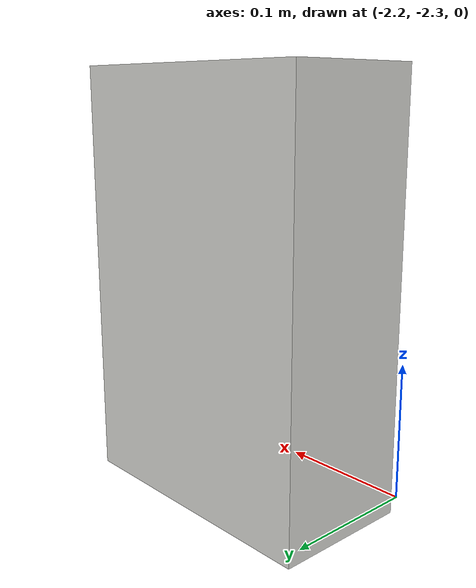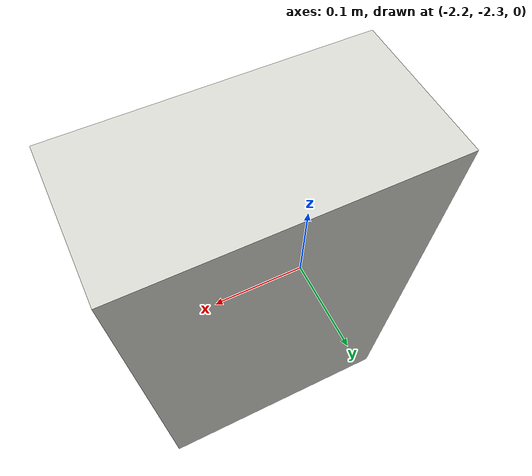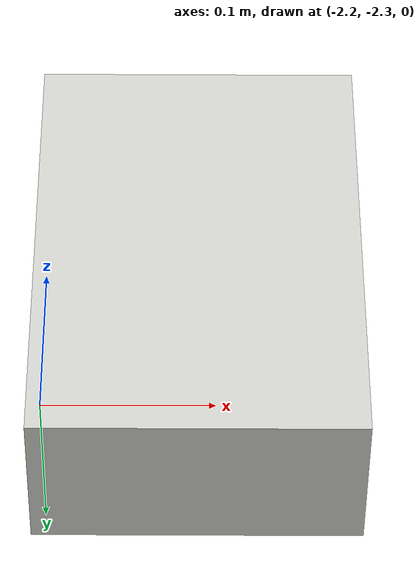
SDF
<?xml version='1.0'?>
<sdf version='1.6'>
  <model name='box'>
    <pose frame=''>-2.11 -2.23 0 0 -0 0</pose>
    <link name='Wall_8'>
      <collision name='Wall_8_Collision'>
        <geometry>
          <box>
            <size>0.2 0.1 0.3</size>
          </box>
        </geometry>
        <pose frame=''>0 0 0.15 0 -0 0</pose>
      </collision>
      <visual name='Wall_8_Visual'>
        <pose frame=''>0 0 0.15 0 -0 0</pose>
        <geometry>
          <box>
            <size>0.2 0.1 0.3</size>
          </box>
        </geometry>
        <material>
          <script>
            <uri>file://media/materials/scripts/gazebo.material</uri>
            <name>Gazebo/CeilingTiled</name>
          </script>
          <ambient>1 1 1 1</ambient>
        </material>
        <meta>
          <layer>0</layer>
        </meta>
      </visual>
      <pose frame=''>0 0 0 0 -0 0</pose>
    </link>
    <static>1</static>
  </model>
</sdf>
